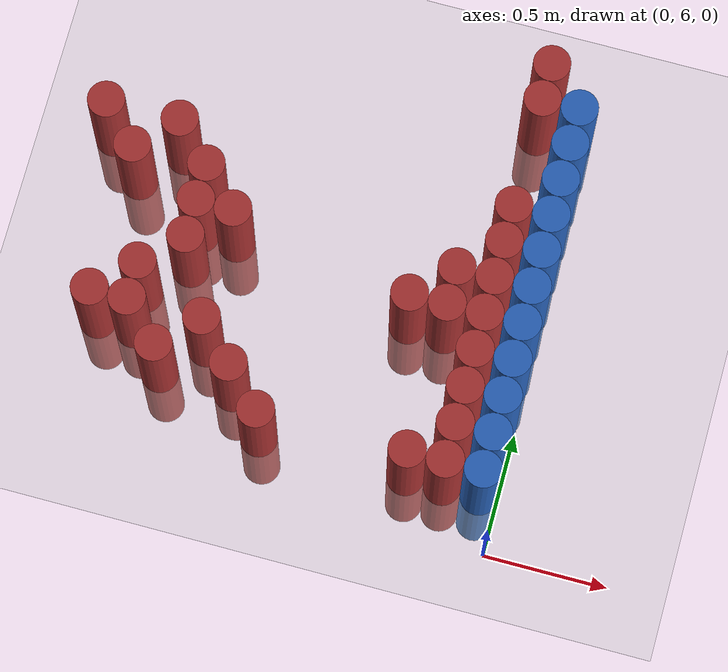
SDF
<sdf version="1.6">
 <world name="default">
  <model name="ground_plane">
   <static>1</static>
   <link name="link">
    <collision name="collision">
     <geometry><plane><normal>0 0 1</normal><size>100 100</size></plane></geometry>
     <surface><friction><ode><mu>100</mu><mu2>50</mu2></ode></friction></surface>
    </collision>
    <visual name="visual">
     <cast_shadows>0</cast_shadows>
     <geometry><plane><normal>0 0 1</normal><size>100 100</size></plane></geometry>
     <material>
      <script><uri>file://media/materials/scripts/gazebo.material</uri><name>Gazebo/Grey</name></script>
     </material>
    </visual>
   </link>
  </model>
  <model name="unit_cylinder_206">
   <static>1</static>
   <pose>-1.875000 7.275000 0.000000 0.000000 0.000000 0.000000</pose>
   <link name="link">
    <inertial>
     <mass>1</mass>
     <inertia><ixx>0.145833</ixx><ixy>0</ixy><ixz>0</ixz><iyy>0.145833</iyy><iyz>0</iyz><izz>0.125</izz></inertia>
    </inertial>
    <collision name="collision">
     <geometry><cylinder><radius>0.075000</radius><length>1</length></cylinder></geometry>
    </collision>
    <visual name="visual">
     <geometry><cylinder><radius>0.075000</radius><length>1</length></cylinder></geometry>
     <material>
      <ambient>0.648000 0.192000 0.192000 1</ambient>
      <diffuse>0.648000 0.192000 0.192000 1</diffuse>
     </material>
     <material>
      <script><name>Gazebo/Grey</name><uri>file://media/materials/scripts/gazebo.material</uri></script>
     </material>
    </visual>
    <sensor name="sensor_contact" type="contact"><contact><collision>collision</collision></contact></sensor>
   </link>
   <plugin filename="gz-sim-touchplugin-system" name="gz::sim::systems::TouchPlugin">
    <target>robot</target>
    <namespace>robot</namespace>
    <time>0.001</time>
    <enabled>true</enabled>
   </plugin>
  </model>
  <model name="unit_cylinder_207">
   <static>1</static>
   <pose>-1.725000 6.525000 0.000000 0.000000 0.000000 0.000000</pose>
   <link name="link">
    <inertial>
     <mass>1</mass>
     <inertia><ixx>0.145833</ixx><ixy>0</ixy><ixz>0</ixz><iyy>0.145833</iyy><iyz>0</iyz><izz>0.125</izz></inertia>
    </inertial>
    <collision name="collision">
     <geometry><cylinder><radius>0.075000</radius><length>1</length></cylinder></geometry>
    </collision>
    <visual name="visual">
     <geometry><cylinder><radius>0.075000</radius><length>1</length></cylinder></geometry>
     <material>
      <ambient>0.648000 0.192000 0.192000 1</ambient>
      <diffuse>0.648000 0.192000 0.192000 1</diffuse>
     </material>
     <material>
      <script><name>Gazebo/Grey</name><uri>file://media/materials/scripts/gazebo.material</uri></script>
     </material>
    </visual>
    <sensor name="sensor_contact" type="contact"><contact><collision>collision</collision></contact></sensor>
   </link>
   <plugin filename="gz-sim-touchplugin-system" name="gz::sim::systems::TouchPlugin">
    <target>robot</target>
    <namespace>robot</namespace>
    <time>0.001</time>
    <enabled>true</enabled>
   </plugin>
  </model>
  <model name="unit_cylinder_208">
   <static>1</static>
   <pose>-1.725000 7.125000 0.000000 0.000000 0.000000 0.000000</pose>
   <link name="link">
    <inertial>
     <mass>1</mass>
     <inertia><ixx>0.145833</ixx><ixy>0</ixy><ixz>0</ixz><iyy>0.145833</iyy><iyz>0</iyz><izz>0.125</izz></inertia>
    </inertial>
    <collision name="collision">
     <geometry><cylinder><radius>0.075000</radius><length>1</length></cylinder></geometry>
    </collision>
    <visual name="visual">
     <geometry><cylinder><radius>0.075000</radius><length>1</length></cylinder></geometry>
     <material>
      <ambient>0.648000 0.192000 0.192000 1</ambient>
      <diffuse>0.648000 0.192000 0.192000 1</diffuse>
     </material>
     <material>
      <script><name>Gazebo/Grey</name><uri>file://media/materials/scripts/gazebo.material</uri></script>
     </material>
    </visual>
    <sensor name="sensor_contact" type="contact"><contact><collision>collision</collision></contact></sensor>
   </link>
   <plugin filename="gz-sim-touchplugin-system" name="gz::sim::systems::TouchPlugin">
    <target>robot</target>
    <namespace>robot</namespace>
    <time>0.001</time>
    <enabled>true</enabled>
   </plugin>
  </model>
  <model name="unit_cylinder_211">
   <static>1</static>
   <pose>-1.575000 6.525000 0.000000 0.000000 0.000000 0.000000</pose>
   <link name="link">
    <inertial>
     <mass>1</mass>
     <inertia><ixx>0.145833</ixx><ixy>0</ixy><ixz>0</ixz><iyy>0.145833</iyy><iyz>0</iyz><izz>0.125</izz></inertia>
    </inertial>
    <collision name="collision">
     <geometry><cylinder><radius>0.075000</radius><length>1</length></cylinder></geometry>
    </collision>
    <visual name="visual">
     <geometry><cylinder><radius>0.075000</radius><length>1</length></cylinder></geometry>
     <material>
      <ambient>0.648000 0.192000 0.192000 1</ambient>
      <diffuse>0.648000 0.192000 0.192000 1</diffuse>
     </material>
     <material>
      <script><name>Gazebo/Grey</name><uri>file://media/materials/scripts/gazebo.material</uri></script>
     </material>
    </visual>
    <sensor name="sensor_contact" type="contact"><contact><collision>collision</collision></contact></sensor>
   </link>
   <plugin filename="gz-sim-touchplugin-system" name="gz::sim::systems::TouchPlugin">
    <target>robot</target>
    <namespace>robot</namespace>
    <time>0.001</time>
    <enabled>true</enabled>
   </plugin>
  </model>
  <model name="unit_cylinder_212">
   <static>1</static>
   <pose>-1.575000 6.675000 0.000000 0.000000 0.000000 0.000000</pose>
   <link name="link">
    <inertial>
     <mass>1</mass>
     <inertia><ixx>0.145833</ixx><ixy>0</ixy><ixz>0</ixz><iyy>0.145833</iyy><iyz>0</iyz><izz>0.125</izz></inertia>
    </inertial>
    <collision name="collision">
     <geometry><cylinder><radius>0.075000</radius><length>1</length></cylinder></geometry>
    </collision>
    <visual name="visual">
     <geometry><cylinder><radius>0.075000</radius><length>1</length></cylinder></geometry>
     <material>
      <ambient>0.648000 0.192000 0.192000 1</ambient>
      <diffuse>0.648000 0.192000 0.192000 1</diffuse>
     </material>
     <material>
      <script><name>Gazebo/Grey</name><uri>file://media/materials/scripts/gazebo.material</uri></script>
     </material>
    </visual>
    <sensor name="sensor_contact" type="contact"><contact><collision>collision</collision></contact></sensor>
   </link>
   <plugin filename="gz-sim-touchplugin-system" name="gz::sim::systems::TouchPlugin">
    <target>robot</target>
    <namespace>robot</namespace>
    <time>0.001</time>
    <enabled>true</enabled>
   </plugin>
  </model>
  <model name="unit_cylinder_213">
   <static>1</static>
   <pose>-1.575000 7.275000 0.000000 0.000000 0.000000 0.000000</pose>
   <link name="link">
    <inertial>
     <mass>1</mass>
     <inertia><ixx>0.145833</ixx><ixy>0</ixy><ixz>0</ixz><iyy>0.145833</iyy><iyz>0</iyz><izz>0.125</izz></inertia>
    </inertial>
    <collision name="collision">
     <geometry><cylinder><radius>0.075000</radius><length>1</length></cylinder></geometry>
    </collision>
    <visual name="visual">
     <geometry><cylinder><radius>0.075000</radius><length>1</length></cylinder></geometry>
     <material>
      <ambient>0.648000 0.192000 0.192000 1</ambient>
      <diffuse>0.648000 0.192000 0.192000 1</diffuse>
     </material>
     <material>
      <script><name>Gazebo/Grey</name><uri>file://media/materials/scripts/gazebo.material</uri></script>
     </material>
    </visual>
    <sensor name="sensor_contact" type="contact"><contact><collision>collision</collision></contact></sensor>
   </link>
   <plugin filename="gz-sim-touchplugin-system" name="gz::sim::systems::TouchPlugin">
    <target>robot</target>
    <namespace>robot</namespace>
    <time>0.001</time>
    <enabled>true</enabled>
   </plugin>
  </model>
  <model name="unit_cylinder_215">
   <static>1</static>
   <pose>-1.425000 6.375000 0.000000 0.000000 0.000000 0.000000</pose>
   <link name="link">
    <inertial>
     <mass>1</mass>
     <inertia><ixx>0.145833</ixx><ixy>0</ixy><ixz>0</ixz><iyy>0.145833</iyy><iyz>0</iyz><izz>0.125</izz></inertia>
    </inertial>
    <collision name="collision">
     <geometry><cylinder><radius>0.075000</radius><length>1</length></cylinder></geometry>
    </collision>
    <visual name="visual">
     <geometry><cylinder><radius>0.075000</radius><length>1</length></cylinder></geometry>
     <material>
      <ambient>0.648000 0.192000 0.192000 1</ambient>
      <diffuse>0.648000 0.192000 0.192000 1</diffuse>
     </material>
     <material>
      <script><name>Gazebo/Grey</name><uri>file://media/materials/scripts/gazebo.material</uri></script>
     </material>
    </visual>
    <sensor name="sensor_contact" type="contact"><contact><collision>collision</collision></contact></sensor>
   </link>
   <plugin filename="gz-sim-touchplugin-system" name="gz::sim::systems::TouchPlugin">
    <target>robot</target>
    <namespace>robot</namespace>
    <time>0.001</time>
    <enabled>true</enabled>
   </plugin>
  </model>
  <model name="unit_cylinder_216">
   <static>1</static>
   <pose>-1.425000 6.825000 0.000000 0.000000 0.000000 0.000000</pose>
   <link name="link">
    <inertial>
     <mass>1</mass>
     <inertia><ixx>0.145833</ixx><ixy>0</ixy><ixz>0</ixz><iyy>0.145833</iyy><iyz>0</iyz><izz>0.125</izz></inertia>
    </inertial>
    <collision name="collision">
     <geometry><cylinder><radius>0.075000</radius><length>1</length></cylinder></geometry>
    </collision>
    <visual name="visual">
     <geometry><cylinder><radius>0.075000</radius><length>1</length></cylinder></geometry>
     <material>
      <ambient>0.648000 0.192000 0.192000 1</ambient>
      <diffuse>0.648000 0.192000 0.192000 1</diffuse>
     </material>
     <material>
      <script><name>Gazebo/Grey</name><uri>file://media/materials/scripts/gazebo.material</uri></script>
     </material>
    </visual>
    <sensor name="sensor_contact" type="contact"><contact><collision>collision</collision></contact></sensor>
   </link>
   <plugin filename="gz-sim-touchplugin-system" name="gz::sim::systems::TouchPlugin">
    <target>robot</target>
    <namespace>robot</namespace>
    <time>0.001</time>
    <enabled>true</enabled>
   </plugin>
  </model>
  <model name="unit_cylinder_217">
   <static>1</static>
   <pose>-1.425000 6.975000 0.000000 0.000000 0.000000 0.000000</pose>
   <link name="link">
    <inertial>
     <mass>1</mass>
     <inertia><ixx>0.145833</ixx><ixy>0</ixy><ixz>0</ixz><iyy>0.145833</iyy><iyz>0</iyz><izz>0.125</izz></inertia>
    </inertial>
    <collision name="collision">
     <geometry><cylinder><radius>0.075000</radius><length>1</length></cylinder></geometry>
    </collision>
    <visual name="visual">
     <geometry><cylinder><radius>0.075000</radius><length>1</length></cylinder></geometry>
     <material>
      <ambient>0.648000 0.192000 0.192000 1</ambient>
      <diffuse>0.648000 0.192000 0.192000 1</diffuse>
     </material>
     <material>
      <script><name>Gazebo/Grey</name><uri>file://media/materials/scripts/gazebo.material</uri></script>
     </material>
    </visual>
    <sensor name="sensor_contact" type="contact"><contact><collision>collision</collision></contact></sensor>
   </link>
   <plugin filename="gz-sim-touchplugin-system" name="gz::sim::systems::TouchPlugin">
    <target>robot</target>
    <namespace>robot</namespace>
    <time>0.001</time>
    <enabled>true</enabled>
   </plugin>
  </model>
  <model name="unit_cylinder_218">
   <static>1</static>
   <pose>-1.425000 7.125000 0.000000 0.000000 0.000000 0.000000</pose>
   <link name="link">
    <inertial>
     <mass>1</mass>
     <inertia><ixx>0.145833</ixx><ixy>0</ixy><ixz>0</ixz><iyy>0.145833</iyy><iyz>0</iyz><izz>0.125</izz></inertia>
    </inertial>
    <collision name="collision">
     <geometry><cylinder><radius>0.075000</radius><length>1</length></cylinder></geometry>
    </collision>
    <visual name="visual">
     <geometry><cylinder><radius>0.075000</radius><length>1</length></cylinder></geometry>
     <material>
      <ambient>0.648000 0.192000 0.192000 1</ambient>
      <diffuse>0.648000 0.192000 0.192000 1</diffuse>
     </material>
     <material>
      <script><name>Gazebo/Grey</name><uri>file://media/materials/scripts/gazebo.material</uri></script>
     </material>
    </visual>
    <sensor name="sensor_contact" type="contact"><contact><collision>collision</collision></contact></sensor>
   </link>
   <plugin filename="gz-sim-touchplugin-system" name="gz::sim::systems::TouchPlugin">
    <target>robot</target>
    <namespace>robot</namespace>
    <time>0.001</time>
    <enabled>true</enabled>
   </plugin>
  </model>
  <model name="unit_cylinder_219">
   <static>1</static>
   <pose>-1.275000 6.525000 0.000000 0.000000 0.000000 0.000000</pose>
   <link name="link">
    <inertial>
     <mass>1</mass>
     <inertia><ixx>0.145833</ixx><ixy>0</ixy><ixz>0</ixz><iyy>0.145833</iyy><iyz>0</iyz><izz>0.125</izz></inertia>
    </inertial>
    <collision name="collision">
     <geometry><cylinder><radius>0.075000</radius><length>1</length></cylinder></geometry>
    </collision>
    <visual name="visual">
     <geometry><cylinder><radius>0.075000</radius><length>1</length></cylinder></geometry>
     <material>
      <ambient>0.648000 0.192000 0.192000 1</ambient>
      <diffuse>0.648000 0.192000 0.192000 1</diffuse>
     </material>
     <material>
      <script><name>Gazebo/Grey</name><uri>file://media/materials/scripts/gazebo.material</uri></script>
     </material>
    </visual>
    <sensor name="sensor_contact" type="contact"><contact><collision>collision</collision></contact></sensor>
   </link>
   <plugin filename="gz-sim-touchplugin-system" name="gz::sim::systems::TouchPlugin">
    <target>robot</target>
    <namespace>robot</namespace>
    <time>0.001</time>
    <enabled>true</enabled>
   </plugin>
  </model>
  <model name="unit_cylinder_220">
   <static>1</static>
   <pose>-1.275000 6.975000 0.000000 0.000000 0.000000 0.000000</pose>
   <link name="link">
    <inertial>
     <mass>1</mass>
     <inertia><ixx>0.145833</ixx><ixy>0</ixy><ixz>0</ixz><iyy>0.145833</iyy><iyz>0</iyz><izz>0.125</izz></inertia>
    </inertial>
    <collision name="collision">
     <geometry><cylinder><radius>0.075000</radius><length>1</length></cylinder></geometry>
    </collision>
    <visual name="visual">
     <geometry><cylinder><radius>0.075000</radius><length>1</length></cylinder></geometry>
     <material>
      <ambient>0.648000 0.192000 0.192000 1</ambient>
      <diffuse>0.648000 0.192000 0.192000 1</diffuse>
     </material>
     <material>
      <script><name>Gazebo/Grey</name><uri>file://media/materials/scripts/gazebo.material</uri></script>
     </material>
    </visual>
    <sensor name="sensor_contact" type="contact"><contact><collision>collision</collision></contact></sensor>
   </link>
   <plugin filename="gz-sim-touchplugin-system" name="gz::sim::systems::TouchPlugin">
    <target>robot</target>
    <namespace>robot</namespace>
    <time>0.001</time>
    <enabled>true</enabled>
   </plugin>
  </model>
  <model name="unit_cylinder_224">
   <static>1</static>
   <pose>-1.125000 6.375000 0.000000 0.000000 0.000000 0.000000</pose>
   <link name="link">
    <inertial>
     <mass>1</mass>
     <inertia><ixx>0.145833</ixx><ixy>0</ixy><ixz>0</ixz><iyy>0.145833</iyy><iyz>0</iyz><izz>0.125</izz></inertia>
    </inertial>
    <collision name="collision">
     <geometry><cylinder><radius>0.075000</radius><length>1</length></cylinder></geometry>
    </collision>
    <visual name="visual">
     <geometry><cylinder><radius>0.075000</radius><length>1</length></cylinder></geometry>
     <material>
      <ambient>0.648000 0.192000 0.192000 1</ambient>
      <diffuse>0.648000 0.192000 0.192000 1</diffuse>
     </material>
     <material>
      <script><name>Gazebo/Grey</name><uri>file://media/materials/scripts/gazebo.material</uri></script>
     </material>
    </visual>
    <sensor name="sensor_contact" type="contact"><contact><collision>collision</collision></contact></sensor>
   </link>
   <plugin filename="gz-sim-touchplugin-system" name="gz::sim::systems::TouchPlugin">
    <target>robot</target>
    <namespace>robot</namespace>
    <time>0.001</time>
    <enabled>true</enabled>
   </plugin>
  </model>
  <model name="unit_cylinder_230">
   <static>1</static>
   <pose>-0.975000 6.225000 0.000000 0.000000 0.000000 0.000000</pose>
   <link name="link">
    <inertial>
     <mass>1</mass>
     <inertia><ixx>0.145833</ixx><ixy>0</ixy><ixz>0</ixz><iyy>0.145833</iyy><iyz>0</iyz><izz>0.125</izz></inertia>
    </inertial>
    <collision name="collision">
     <geometry><cylinder><radius>0.075000</radius><length>1</length></cylinder></geometry>
    </collision>
    <visual name="visual">
     <geometry><cylinder><radius>0.075000</radius><length>1</length></cylinder></geometry>
     <material>
      <ambient>0.648000 0.192000 0.192000 1</ambient>
      <diffuse>0.648000 0.192000 0.192000 1</diffuse>
     </material>
     <material>
      <script><name>Gazebo/Grey</name><uri>file://media/materials/scripts/gazebo.material</uri></script>
     </material>
    </visual>
    <sensor name="sensor_contact" type="contact"><contact><collision>collision</collision></contact></sensor>
   </link>
   <plugin filename="gz-sim-touchplugin-system" name="gz::sim::systems::TouchPlugin">
    <target>robot</target>
    <namespace>robot</namespace>
    <time>0.001</time>
    <enabled>true</enabled>
   </plugin>
  </model>
  <model name="unit_cylinder_243">
   <static>1</static>
   <pose>-0.525000 6.825000 0.000000 0.000000 0.000000 0.000000</pose>
   <link name="link">
    <inertial>
     <mass>1</mass>
     <inertia><ixx>0.145833</ixx><ixy>0</ixy><ixz>0</ixz><iyy>0.145833</iyy><iyz>0</iyz><izz>0.125</izz></inertia>
    </inertial>
    <collision name="collision">
     <geometry><cylinder><radius>0.075000</radius><length>1</length></cylinder></geometry>
    </collision>
    <visual name="visual">
     <geometry><cylinder><radius>0.075000</radius><length>1</length></cylinder></geometry>
     <material>
      <ambient>0.648000 0.192000 0.192000 1</ambient>
      <diffuse>0.648000 0.192000 0.192000 1</diffuse>
     </material>
     <material>
      <script><name>Gazebo/Grey</name><uri>file://media/materials/scripts/gazebo.material</uri></script>
     </material>
    </visual>
    <sensor name="sensor_contact" type="contact"><contact><collision>collision</collision></contact></sensor>
   </link>
   <plugin filename="gz-sim-touchplugin-system" name="gz::sim::systems::TouchPlugin">
    <target>robot</target>
    <namespace>robot</namespace>
    <time>0.001</time>
    <enabled>true</enabled>
   </plugin>
  </model>
  <model name="unit_cylinder_252">
   <static>1</static>
   <pose>-0.375000 6.225000 0.000000 0.000000 0.000000 0.000000</pose>
   <link name="link">
    <inertial>
     <mass>1</mass>
     <inertia><ixx>0.145833</ixx><ixy>0</ixy><ixz>0</ixz><iyy>0.145833</iyy><iyz>0</iyz><izz>0.125</izz></inertia>
    </inertial>
    <collision name="collision">
     <geometry><cylinder><radius>0.075000</radius><length>1</length></cylinder></geometry>
    </collision>
    <visual name="visual">
     <geometry><cylinder><radius>0.075000</radius><length>1</length></cylinder></geometry>
     <material>
      <ambient>0.648000 0.192000 0.192000 1</ambient>
      <diffuse>0.648000 0.192000 0.192000 1</diffuse>
     </material>
     <material>
      <script><name>Gazebo/Grey</name><uri>file://media/materials/scripts/gazebo.material</uri></script>
     </material>
    </visual>
    <sensor name="sensor_contact" type="contact"><contact><collision>collision</collision></contact></sensor>
   </link>
   <plugin filename="gz-sim-touchplugin-system" name="gz::sim::systems::TouchPlugin">
    <target>robot</target>
    <namespace>robot</namespace>
    <time>0.001</time>
    <enabled>true</enabled>
   </plugin>
  </model>
  <model name="unit_cylinder_253">
   <static>1</static>
   <pose>-0.375000 6.825000 0.000000 0.000000 0.000000 0.000000</pose>
   <link name="link">
    <inertial>
     <mass>1</mass>
     <inertia><ixx>0.145833</ixx><ixy>0</ixy><ixz>0</ixz><iyy>0.145833</iyy><iyz>0</iyz><izz>0.125</izz></inertia>
    </inertial>
    <collision name="collision">
     <geometry><cylinder><radius>0.075000</radius><length>1</length></cylinder></geometry>
    </collision>
    <visual name="visual">
     <geometry><cylinder><radius>0.075000</radius><length>1</length></cylinder></geometry>
     <material>
      <ambient>0.648000 0.192000 0.192000 1</ambient>
      <diffuse>0.648000 0.192000 0.192000 1</diffuse>
     </material>
     <material>
      <script><name>Gazebo/Grey</name><uri>file://media/materials/scripts/gazebo.material</uri></script>
     </material>
    </visual>
    <sensor name="sensor_contact" type="contact"><contact><collision>collision</collision></contact></sensor>
   </link>
   <plugin filename="gz-sim-touchplugin-system" name="gz::sim::systems::TouchPlugin">
    <target>robot</target>
    <namespace>robot</namespace>
    <time>0.001</time>
    <enabled>true</enabled>
   </plugin>
  </model>
  <model name="unit_cylinder_254">
   <static>1</static>
   <pose>-0.375000 6.975000 0.000000 0.000000 0.000000 0.000000</pose>
   <link name="link">
    <inertial>
     <mass>1</mass>
     <inertia><ixx>0.145833</ixx><ixy>0</ixy><ixz>0</ixz><iyy>0.145833</iyy><iyz>0</iyz><izz>0.125</izz></inertia>
    </inertial>
    <collision name="collision">
     <geometry><cylinder><radius>0.075000</radius><length>1</length></cylinder></geometry>
    </collision>
    <visual name="visual">
     <geometry><cylinder><radius>0.075000</radius><length>1</length></cylinder></geometry>
     <material>
      <ambient>0.648000 0.192000 0.192000 1</ambient>
      <diffuse>0.648000 0.192000 0.192000 1</diffuse>
     </material>
     <material>
      <script><name>Gazebo/Grey</name><uri>file://media/materials/scripts/gazebo.material</uri></script>
     </material>
    </visual>
    <sensor name="sensor_contact" type="contact"><contact><collision>collision</collision></contact></sensor>
   </link>
   <plugin filename="gz-sim-touchplugin-system" name="gz::sim::systems::TouchPlugin">
    <target>robot</target>
    <namespace>robot</namespace>
    <time>0.001</time>
    <enabled>true</enabled>
   </plugin>
  </model>
  <model name="unit_cylinder_267">
   <static>1</static>
   <pose>-0.225000 6.225000 0.000000 0.000000 0.000000 0.000000</pose>
   <link name="link">
    <inertial>
     <mass>1</mass>
     <inertia><ixx>0.145833</ixx><ixy>0</ixy><ixz>0</ixz><iyy>0.145833</iyy><iyz>0</iyz><izz>0.125</izz></inertia>
    </inertial>
    <collision name="collision">
     <geometry><cylinder><radius>0.075000</radius><length>1</length></cylinder></geometry>
    </collision>
    <visual name="visual">
     <geometry><cylinder><radius>0.075000</radius><length>1</length></cylinder></geometry>
     <material>
      <ambient>0.648000 0.192000 0.192000 1</ambient>
      <diffuse>0.648000 0.192000 0.192000 1</diffuse>
     </material>
     <material>
      <script><name>Gazebo/Grey</name><uri>file://media/materials/scripts/gazebo.material</uri></script>
     </material>
    </visual>
    <sensor name="sensor_contact" type="contact"><contact><collision>collision</collision></contact></sensor>
   </link>
   <plugin filename="gz-sim-touchplugin-system" name="gz::sim::systems::TouchPlugin">
    <target>robot</target>
    <namespace>robot</namespace>
    <time>0.001</time>
    <enabled>true</enabled>
   </plugin>
  </model>
  <model name="unit_cylinder_268">
   <static>1</static>
   <pose>-0.225000 6.375000 0.000000 0.000000 0.000000 0.000000</pose>
   <link name="link">
    <inertial>
     <mass>1</mass>
     <inertia><ixx>0.145833</ixx><ixy>0</ixy><ixz>0</ixz><iyy>0.145833</iyy><iyz>0</iyz><izz>0.125</izz></inertia>
    </inertial>
    <collision name="collision">
     <geometry><cylinder><radius>0.075000</radius><length>1</length></cylinder></geometry>
    </collision>
    <visual name="visual">
     <geometry><cylinder><radius>0.075000</radius><length>1</length></cylinder></geometry>
     <material>
      <ambient>0.648000 0.192000 0.192000 1</ambient>
      <diffuse>0.648000 0.192000 0.192000 1</diffuse>
     </material>
     <material>
      <script><name>Gazebo/Grey</name><uri>file://media/materials/scripts/gazebo.material</uri></script>
     </material>
    </visual>
    <sensor name="sensor_contact" type="contact"><contact><collision>collision</collision></contact></sensor>
   </link>
   <plugin filename="gz-sim-touchplugin-system" name="gz::sim::systems::TouchPlugin">
    <target>robot</target>
    <namespace>robot</namespace>
    <time>0.001</time>
    <enabled>true</enabled>
   </plugin>
  </model>
  <model name="unit_cylinder_269">
   <static>1</static>
   <pose>-0.225000 6.525000 0.000000 0.000000 0.000000 0.000000</pose>
   <link name="link">
    <inertial>
     <mass>1</mass>
     <inertia><ixx>0.145833</ixx><ixy>0</ixy><ixz>0</ixz><iyy>0.145833</iyy><iyz>0</iyz><izz>0.125</izz></inertia>
    </inertial>
    <collision name="collision">
     <geometry><cylinder><radius>0.075000</radius><length>1</length></cylinder></geometry>
    </collision>
    <visual name="visual">
     <geometry><cylinder><radius>0.075000</radius><length>1</length></cylinder></geometry>
     <material>
      <ambient>0.648000 0.192000 0.192000 1</ambient>
      <diffuse>0.648000 0.192000 0.192000 1</diffuse>
     </material>
     <material>
      <script><name>Gazebo/Grey</name><uri>file://media/materials/scripts/gazebo.material</uri></script>
     </material>
    </visual>
    <sensor name="sensor_contact" type="contact"><contact><collision>collision</collision></contact></sensor>
   </link>
   <plugin filename="gz-sim-touchplugin-system" name="gz::sim::systems::TouchPlugin">
    <target>robot</target>
    <namespace>robot</namespace>
    <time>0.001</time>
    <enabled>true</enabled>
   </plugin>
  </model>
  <model name="unit_cylinder_270">
   <static>1</static>
   <pose>-0.225000 6.675000 0.000000 0.000000 0.000000 0.000000</pose>
   <link name="link">
    <inertial>
     <mass>1</mass>
     <inertia><ixx>0.145833</ixx><ixy>0</ixy><ixz>0</ixz><iyy>0.145833</iyy><iyz>0</iyz><izz>0.125</izz></inertia>
    </inertial>
    <collision name="collision">
     <geometry><cylinder><radius>0.075000</radius><length>1</length></cylinder></geometry>
    </collision>
    <visual name="visual">
     <geometry><cylinder><radius>0.075000</radius><length>1</length></cylinder></geometry>
     <material>
      <ambient>0.648000 0.192000 0.192000 1</ambient>
      <diffuse>0.648000 0.192000 0.192000 1</diffuse>
     </material>
     <material>
      <script><name>Gazebo/Grey</name><uri>file://media/materials/scripts/gazebo.material</uri></script>
     </material>
    </visual>
    <sensor name="sensor_contact" type="contact"><contact><collision>collision</collision></contact></sensor>
   </link>
   <plugin filename="gz-sim-touchplugin-system" name="gz::sim::systems::TouchPlugin">
    <target>robot</target>
    <namespace>robot</namespace>
    <time>0.001</time>
    <enabled>true</enabled>
   </plugin>
  </model>
  <model name="unit_cylinder_271">
   <static>1</static>
   <pose>-0.225000 6.825000 0.000000 0.000000 0.000000 0.000000</pose>
   <link name="link">
    <inertial>
     <mass>1</mass>
     <inertia><ixx>0.145833</ixx><ixy>0</ixy><ixz>0</ixz><iyy>0.145833</iyy><iyz>0</iyz><izz>0.125</izz></inertia>
    </inertial>
    <collision name="collision">
     <geometry><cylinder><radius>0.075000</radius><length>1</length></cylinder></geometry>
    </collision>
    <visual name="visual">
     <geometry><cylinder><radius>0.075000</radius><length>1</length></cylinder></geometry>
     <material>
      <ambient>0.648000 0.192000 0.192000 1</ambient>
      <diffuse>0.648000 0.192000 0.192000 1</diffuse>
     </material>
     <material>
      <script><name>Gazebo/Grey</name><uri>file://media/materials/scripts/gazebo.material</uri></script>
     </material>
    </visual>
    <sensor name="sensor_contact" type="contact"><contact><collision>collision</collision></contact></sensor>
   </link>
   <plugin filename="gz-sim-touchplugin-system" name="gz::sim::systems::TouchPlugin">
    <target>robot</target>
    <namespace>robot</namespace>
    <time>0.001</time>
    <enabled>true</enabled>
   </plugin>
  </model>
  <model name="unit_cylinder_272">
   <static>1</static>
   <pose>-0.225000 6.975000 0.000000 0.000000 0.000000 0.000000</pose>
   <link name="link">
    <inertial>
     <mass>1</mass>
     <inertia><ixx>0.145833</ixx><ixy>0</ixy><ixz>0</ixz><iyy>0.145833</iyy><iyz>0</iyz><izz>0.125</izz></inertia>
    </inertial>
    <collision name="collision">
     <geometry><cylinder><radius>0.075000</radius><length>1</length></cylinder></geometry>
    </collision>
    <visual name="visual">
     <geometry><cylinder><radius>0.075000</radius><length>1</length></cylinder></geometry>
     <material>
      <ambient>0.648000 0.192000 0.192000 1</ambient>
      <diffuse>0.648000 0.192000 0.192000 1</diffuse>
     </material>
     <material>
      <script><name>Gazebo/Grey</name><uri>file://media/materials/scripts/gazebo.material</uri></script>
     </material>
    </visual>
    <sensor name="sensor_contact" type="contact"><contact><collision>collision</collision></contact></sensor>
   </link>
   <plugin filename="gz-sim-touchplugin-system" name="gz::sim::systems::TouchPlugin">
    <target>robot</target>
    <namespace>robot</namespace>
    <time>0.001</time>
    <enabled>true</enabled>
   </plugin>
  </model>
  <model name="unit_cylinder_273">
   <static>1</static>
   <pose>-0.225000 7.125000 0.000000 0.000000 0.000000 0.000000</pose>
   <link name="link">
    <inertial>
     <mass>1</mass>
     <inertia><ixx>0.145833</ixx><ixy>0</ixy><ixz>0</ixz><iyy>0.145833</iyy><iyz>0</iyz><izz>0.125</izz></inertia>
    </inertial>
    <collision name="collision">
     <geometry><cylinder><radius>0.075000</radius><length>1</length></cylinder></geometry>
    </collision>
    <visual name="visual">
     <geometry><cylinder><radius>0.075000</radius><length>1</length></cylinder></geometry>
     <material>
      <ambient>0.648000 0.192000 0.192000 1</ambient>
      <diffuse>0.648000 0.192000 0.192000 1</diffuse>
     </material>
     <material>
      <script><name>Gazebo/Grey</name><uri>file://media/materials/scripts/gazebo.material</uri></script>
     </material>
    </visual>
    <sensor name="sensor_contact" type="contact"><contact><collision>collision</collision></contact></sensor>
   </link>
   <plugin filename="gz-sim-touchplugin-system" name="gz::sim::systems::TouchPlugin">
    <target>robot</target>
    <namespace>robot</namespace>
    <time>0.001</time>
    <enabled>true</enabled>
   </plugin>
  </model>
  <model name="unit_cylinder_274">
   <static>1</static>
   <pose>-0.225000 7.275000 0.000000 0.000000 0.000000 0.000000</pose>
   <link name="link">
    <inertial>
     <mass>1</mass>
     <inertia><ixx>0.145833</ixx><ixy>0</ixy><ixz>0</ixz><iyy>0.145833</iyy><iyz>0</iyz><izz>0.125</izz></inertia>
    </inertial>
    <collision name="collision">
     <geometry><cylinder><radius>0.075000</radius><length>1</length></cylinder></geometry>
    </collision>
    <visual name="visual">
     <geometry><cylinder><radius>0.075000</radius><length>1</length></cylinder></geometry>
     <material>
      <ambient>0.648000 0.192000 0.192000 1</ambient>
      <diffuse>0.648000 0.192000 0.192000 1</diffuse>
     </material>
     <material>
      <script><name>Gazebo/Grey</name><uri>file://media/materials/scripts/gazebo.material</uri></script>
     </material>
    </visual>
    <sensor name="sensor_contact" type="contact"><contact><collision>collision</collision></contact></sensor>
   </link>
   <plugin filename="gz-sim-touchplugin-system" name="gz::sim::systems::TouchPlugin">
    <target>robot</target>
    <namespace>robot</namespace>
    <time>0.001</time>
    <enabled>true</enabled>
   </plugin>
  </model>
  <model name="unit_cylinder_275">
   <static>1</static>
   <pose>-0.225000 7.725000 0.000000 0.000000 0.000000 0.000000</pose>
   <link name="link">
    <inertial>
     <mass>1</mass>
     <inertia><ixx>0.145833</ixx><ixy>0</ixy><ixz>0</ixz><iyy>0.145833</iyy><iyz>0</iyz><izz>0.125</izz></inertia>
    </inertial>
    <collision name="collision">
     <geometry><cylinder><radius>0.075000</radius><length>1</length></cylinder></geometry>
    </collision>
    <visual name="visual">
     <geometry><cylinder><radius>0.075000</radius><length>1</length></cylinder></geometry>
     <material>
      <ambient>0.648000 0.192000 0.192000 1</ambient>
      <diffuse>0.648000 0.192000 0.192000 1</diffuse>
     </material>
     <material>
      <script><name>Gazebo/Grey</name><uri>file://media/materials/scripts/gazebo.material</uri></script>
     </material>
    </visual>
    <sensor name="sensor_contact" type="contact"><contact><collision>collision</collision></contact></sensor>
   </link>
   <plugin filename="gz-sim-touchplugin-system" name="gz::sim::systems::TouchPlugin">
    <target>robot</target>
    <namespace>robot</namespace>
    <time>0.001</time>
    <enabled>true</enabled>
   </plugin>
  </model>
  <model name="unit_cylinder_276">
   <static>1</static>
   <pose>-0.225000 7.875000 0.000000 0.000000 0.000000 0.000000</pose>
   <link name="link">
    <inertial>
     <mass>1</mass>
     <inertia><ixx>0.145833</ixx><ixy>0</ixy><ixz>0</ixz><iyy>0.145833</iyy><iyz>0</iyz><izz>0.125</izz></inertia>
    </inertial>
    <collision name="collision">
     <geometry><cylinder><radius>0.075000</radius><length>1</length></cylinder></geometry>
    </collision>
    <visual name="visual">
     <geometry><cylinder><radius>0.075000</radius><length>1</length></cylinder></geometry>
     <material>
      <ambient>0.648000 0.192000 0.192000 1</ambient>
      <diffuse>0.648000 0.192000 0.192000 1</diffuse>
     </material>
     <material>
      <script><name>Gazebo/Grey</name><uri>file://media/materials/scripts/gazebo.material</uri></script>
     </material>
    </visual>
    <sensor name="sensor_contact" type="contact"><contact><collision>collision</collision></contact></sensor>
   </link>
   <plugin filename="gz-sim-touchplugin-system" name="gz::sim::systems::TouchPlugin">
    <target>robot</target>
    <namespace>robot</namespace>
    <time>0.001</time>
    <enabled>true</enabled>
   </plugin>
  </model>
  <model name="unit_cylinder_290">
   <static>1</static>
   <pose>-0.075000 6.225000 0.000000 0.000000 0.000000 0.000000</pose>
   <link name="link">
    <inertial>
     <mass>1</mass>
     <inertia><ixx>0.145833</ixx><ixy>0</ixy><ixz>0</ixz><iyy>0.145833</iyy><iyz>0</iyz><izz>0.125</izz></inertia>
    </inertial>
    <collision name="collision">
     <geometry><cylinder><radius>0.075000</radius><length>1</length></cylinder></geometry>
    </collision>
    <visual name="visual">
     <geometry><cylinder><radius>0.075000</radius><length>1</length></cylinder></geometry>
     <material>
      <ambient>0.152000 0.379000 0.720000 1</ambient>
      <diffuse>0.152000 0.379000 0.720000 1</diffuse>
     </material>
     <material>
      <script><name>Gazebo/Grey</name><uri>file://media/materials/scripts/gazebo.material</uri></script>
     </material>
    </visual>
    <sensor name="sensor_contact" type="contact"><contact><collision>collision</collision></contact></sensor>
   </link>
   <plugin filename="gz-sim-touchplugin-system" name="gz::sim::systems::TouchPlugin">
    <target>robot</target>
    <namespace>robot</namespace>
    <time>0.001</time>
    <enabled>true</enabled>
   </plugin>
  </model>
  <model name="unit_cylinder_291">
   <static>1</static>
   <pose>-0.075000 6.375000 0.000000 0.000000 0.000000 0.000000</pose>
   <link name="link">
    <inertial>
     <mass>1</mass>
     <inertia><ixx>0.145833</ixx><ixy>0</ixy><ixz>0</ixz><iyy>0.145833</iyy><iyz>0</iyz><izz>0.125</izz></inertia>
    </inertial>
    <collision name="collision">
     <geometry><cylinder><radius>0.075000</radius><length>1</length></cylinder></geometry>
    </collision>
    <visual name="visual">
     <geometry><cylinder><radius>0.075000</radius><length>1</length></cylinder></geometry>
     <material>
      <ambient>0.152000 0.379000 0.720000 1</ambient>
      <diffuse>0.152000 0.379000 0.720000 1</diffuse>
     </material>
     <material>
      <script><name>Gazebo/Grey</name><uri>file://media/materials/scripts/gazebo.material</uri></script>
     </material>
    </visual>
    <sensor name="sensor_contact" type="contact"><contact><collision>collision</collision></contact></sensor>
   </link>
   <plugin filename="gz-sim-touchplugin-system" name="gz::sim::systems::TouchPlugin">
    <target>robot</target>
    <namespace>robot</namespace>
    <time>0.001</time>
    <enabled>true</enabled>
   </plugin>
  </model>
  <model name="unit_cylinder_292">
   <static>1</static>
   <pose>-0.075000 6.525000 0.000000 0.000000 0.000000 0.000000</pose>
   <link name="link">
    <inertial>
     <mass>1</mass>
     <inertia><ixx>0.145833</ixx><ixy>0</ixy><ixz>0</ixz><iyy>0.145833</iyy><iyz>0</iyz><izz>0.125</izz></inertia>
    </inertial>
    <collision name="collision">
     <geometry><cylinder><radius>0.075000</radius><length>1</length></cylinder></geometry>
    </collision>
    <visual name="visual">
     <geometry><cylinder><radius>0.075000</radius><length>1</length></cylinder></geometry>
     <material>
      <ambient>0.152000 0.379000 0.720000 1</ambient>
      <diffuse>0.152000 0.379000 0.720000 1</diffuse>
     </material>
     <material>
      <script><name>Gazebo/Grey</name><uri>file://media/materials/scripts/gazebo.material</uri></script>
     </material>
    </visual>
    <sensor name="sensor_contact" type="contact"><contact><collision>collision</collision></contact></sensor>
   </link>
   <plugin filename="gz-sim-touchplugin-system" name="gz::sim::systems::TouchPlugin">
    <target>robot</target>
    <namespace>robot</namespace>
    <time>0.001</time>
    <enabled>true</enabled>
   </plugin>
  </model>
  <model name="unit_cylinder_293">
   <static>1</static>
   <pose>-0.075000 6.675000 0.000000 0.000000 0.000000 0.000000</pose>
   <link name="link">
    <inertial>
     <mass>1</mass>
     <inertia><ixx>0.145833</ixx><ixy>0</ixy><ixz>0</ixz><iyy>0.145833</iyy><iyz>0</iyz><izz>0.125</izz></inertia>
    </inertial>
    <collision name="collision">
     <geometry><cylinder><radius>0.075000</radius><length>1</length></cylinder></geometry>
    </collision>
    <visual name="visual">
     <geometry><cylinder><radius>0.075000</radius><length>1</length></cylinder></geometry>
     <material>
      <ambient>0.152000 0.379000 0.720000 1</ambient>
      <diffuse>0.152000 0.379000 0.720000 1</diffuse>
     </material>
     <material>
      <script><name>Gazebo/Grey</name><uri>file://media/materials/scripts/gazebo.material</uri></script>
     </material>
    </visual>
    <sensor name="sensor_contact" type="contact"><contact><collision>collision</collision></contact></sensor>
   </link>
   <plugin filename="gz-sim-touchplugin-system" name="gz::sim::systems::TouchPlugin">
    <target>robot</target>
    <namespace>robot</namespace>
    <time>0.001</time>
    <enabled>true</enabled>
   </plugin>
  </model>
  <model name="unit_cylinder_294">
   <static>1</static>
   <pose>-0.075000 6.825000 0.000000 0.000000 0.000000 0.000000</pose>
   <link name="link">
    <inertial>
     <mass>1</mass>
     <inertia><ixx>0.145833</ixx><ixy>0</ixy><ixz>0</ixz><iyy>0.145833</iyy><iyz>0</iyz><izz>0.125</izz></inertia>
    </inertial>
    <collision name="collision">
     <geometry><cylinder><radius>0.075000</radius><length>1</length></cylinder></geometry>
    </collision>
    <visual name="visual">
     <geometry><cylinder><radius>0.075000</radius><length>1</length></cylinder></geometry>
     <material>
      <ambient>0.152000 0.379000 0.720000 1</ambient>
      <diffuse>0.152000 0.379000 0.720000 1</diffuse>
     </material>
     <material>
      <script><name>Gazebo/Grey</name><uri>file://media/materials/scripts/gazebo.material</uri></script>
     </material>
    </visual>
    <sensor name="sensor_contact" type="contact"><contact><collision>collision</collision></contact></sensor>
   </link>
   <plugin filename="gz-sim-touchplugin-system" name="gz::sim::systems::TouchPlugin">
    <target>robot</target>
    <namespace>robot</namespace>
    <time>0.001</time>
    <enabled>true</enabled>
   </plugin>
  </model>
  <model name="unit_cylinder_295">
   <static>1</static>
   <pose>-0.075000 6.975000 0.000000 0.000000 0.000000 0.000000</pose>
   <link name="link">
    <inertial>
     <mass>1</mass>
     <inertia><ixx>0.145833</ixx><ixy>0</ixy><ixz>0</ixz><iyy>0.145833</iyy><iyz>0</iyz><izz>0.125</izz></inertia>
    </inertial>
    <collision name="collision">
     <geometry><cylinder><radius>0.075000</radius><length>1</length></cylinder></geometry>
    </collision>
    <visual name="visual">
     <geometry><cylinder><radius>0.075000</radius><length>1</length></cylinder></geometry>
     <material>
      <ambient>0.152000 0.379000 0.720000 1</ambient>
      <diffuse>0.152000 0.379000 0.720000 1</diffuse>
     </material>
     <material>
      <script><name>Gazebo/Grey</name><uri>file://media/materials/scripts/gazebo.material</uri></script>
     </material>
    </visual>
    <sensor name="sensor_contact" type="contact"><contact><collision>collision</collision></contact></sensor>
   </link>
   <plugin filename="gz-sim-touchplugin-system" name="gz::sim::systems::TouchPlugin">
    <target>robot</target>
    <namespace>robot</namespace>
    <time>0.001</time>
    <enabled>true</enabled>
   </plugin>
  </model>
  <model name="unit_cylinder_296">
   <static>1</static>
   <pose>-0.075000 7.125000 0.000000 0.000000 0.000000 0.000000</pose>
   <link name="link">
    <inertial>
     <mass>1</mass>
     <inertia><ixx>0.145833</ixx><ixy>0</ixy><ixz>0</ixz><iyy>0.145833</iyy><iyz>0</iyz><izz>0.125</izz></inertia>
    </inertial>
    <collision name="collision">
     <geometry><cylinder><radius>0.075000</radius><length>1</length></cylinder></geometry>
    </collision>
    <visual name="visual">
     <geometry><cylinder><radius>0.075000</radius><length>1</length></cylinder></geometry>
     <material>
      <ambient>0.152000 0.379000 0.720000 1</ambient>
      <diffuse>0.152000 0.379000 0.720000 1</diffuse>
     </material>
     <material>
      <script><name>Gazebo/Grey</name><uri>file://media/materials/scripts/gazebo.material</uri></script>
     </material>
    </visual>
    <sensor name="sensor_contact" type="contact"><contact><collision>collision</collision></contact></sensor>
   </link>
   <plugin filename="gz-sim-touchplugin-system" name="gz::sim::systems::TouchPlugin">
    <target>robot</target>
    <namespace>robot</namespace>
    <time>0.001</time>
    <enabled>true</enabled>
   </plugin>
  </model>
  <model name="unit_cylinder_297">
   <static>1</static>
   <pose>-0.075000 7.275000 0.000000 0.000000 0.000000 0.000000</pose>
   <link name="link">
    <inertial>
     <mass>1</mass>
     <inertia><ixx>0.145833</ixx><ixy>0</ixy><ixz>0</ixz><iyy>0.145833</iyy><iyz>0</iyz><izz>0.125</izz></inertia>
    </inertial>
    <collision name="collision">
     <geometry><cylinder><radius>0.075000</radius><length>1</length></cylinder></geometry>
    </collision>
    <visual name="visual">
     <geometry><cylinder><radius>0.075000</radius><length>1</length></cylinder></geometry>
     <material>
      <ambient>0.152000 0.379000 0.720000 1</ambient>
      <diffuse>0.152000 0.379000 0.720000 1</diffuse>
     </material>
     <material>
      <script><name>Gazebo/Grey</name><uri>file://media/materials/scripts/gazebo.material</uri></script>
     </material>
    </visual>
    <sensor name="sensor_contact" type="contact"><contact><collision>collision</collision></contact></sensor>
   </link>
   <plugin filename="gz-sim-touchplugin-system" name="gz::sim::systems::TouchPlugin">
    <target>robot</target>
    <namespace>robot</namespace>
    <time>0.001</time>
    <enabled>true</enabled>
   </plugin>
  </model>
  <model name="unit_cylinder_298">
   <static>1</static>
   <pose>-0.075000 7.425000 0.000000 0.000000 0.000000 0.000000</pose>
   <link name="link">
    <inertial>
     <mass>1</mass>
     <inertia><ixx>0.145833</ixx><ixy>0</ixy><ixz>0</ixz><iyy>0.145833</iyy><iyz>0</iyz><izz>0.125</izz></inertia>
    </inertial>
    <collision name="collision">
     <geometry><cylinder><radius>0.075000</radius><length>1</length></cylinder></geometry>
    </collision>
    <visual name="visual">
     <geometry><cylinder><radius>0.075000</radius><length>1</length></cylinder></geometry>
     <material>
      <ambient>0.152000 0.379000 0.720000 1</ambient>
      <diffuse>0.152000 0.379000 0.720000 1</diffuse>
     </material>
     <material>
      <script><name>Gazebo/Grey</name><uri>file://media/materials/scripts/gazebo.material</uri></script>
     </material>
    </visual>
    <sensor name="sensor_contact" type="contact"><contact><collision>collision</collision></contact></sensor>
   </link>
   <plugin filename="gz-sim-touchplugin-system" name="gz::sim::systems::TouchPlugin">
    <target>robot</target>
    <namespace>robot</namespace>
    <time>0.001</time>
    <enabled>true</enabled>
   </plugin>
  </model>
  <model name="unit_cylinder_299">
   <static>1</static>
   <pose>-0.075000 7.575000 0.000000 0.000000 0.000000 0.000000</pose>
   <link name="link">
    <inertial>
     <mass>1</mass>
     <inertia><ixx>0.145833</ixx><ixy>0</ixy><ixz>0</ixz><iyy>0.145833</iyy><iyz>0</iyz><izz>0.125</izz></inertia>
    </inertial>
    <collision name="collision">
     <geometry><cylinder><radius>0.075000</radius><length>1</length></cylinder></geometry>
    </collision>
    <visual name="visual">
     <geometry><cylinder><radius>0.075000</radius><length>1</length></cylinder></geometry>
     <material>
      <ambient>0.152000 0.379000 0.720000 1</ambient>
      <diffuse>0.152000 0.379000 0.720000 1</diffuse>
     </material>
     <material>
      <script><name>Gazebo/Grey</name><uri>file://media/materials/scripts/gazebo.material</uri></script>
     </material>
    </visual>
    <sensor name="sensor_contact" type="contact"><contact><collision>collision</collision></contact></sensor>
   </link>
   <plugin filename="gz-sim-touchplugin-system" name="gz::sim::systems::TouchPlugin">
    <target>robot</target>
    <namespace>robot</namespace>
    <time>0.001</time>
    <enabled>true</enabled>
   </plugin>
  </model>
  <model name="unit_cylinder_300">
   <static>1</static>
   <pose>-0.075000 7.725000 0.000000 0.000000 0.000000 0.000000</pose>
   <link name="link">
    <inertial>
     <mass>1</mass>
     <inertia><ixx>0.145833</ixx><ixy>0</ixy><ixz>0</ixz><iyy>0.145833</iyy><iyz>0</iyz><izz>0.125</izz></inertia>
    </inertial>
    <collision name="collision">
     <geometry><cylinder><radius>0.075000</radius><length>1</length></cylinder></geometry>
    </collision>
    <visual name="visual">
     <geometry><cylinder><radius>0.075000</radius><length>1</length></cylinder></geometry>
     <material>
      <ambient>0.152000 0.379000 0.720000 1</ambient>
      <diffuse>0.152000 0.379000 0.720000 1</diffuse>
     </material>
     <material>
      <script><name>Gazebo/Grey</name><uri>file://media/materials/scripts/gazebo.material</uri></script>
     </material>
    </visual>
    <sensor name="sensor_contact" type="contact"><contact><collision>collision</collision></contact></sensor>
   </link>
   <plugin filename="gz-sim-touchplugin-system" name="gz::sim::systems::TouchPlugin">
    <target>robot</target>
    <namespace>robot</namespace>
    <time>0.001</time>
    <enabled>true</enabled>
   </plugin>
  </model>
 </world>
</sdf>
